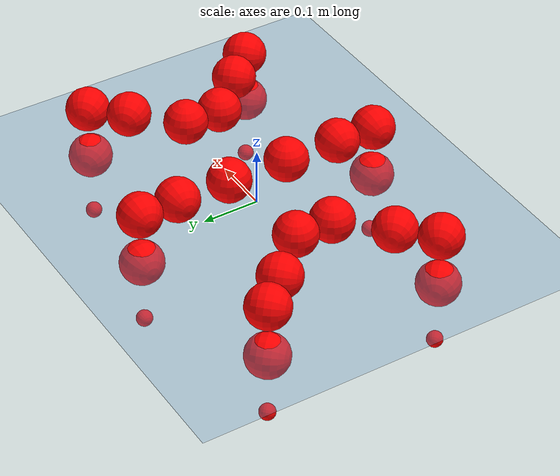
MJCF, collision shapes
<mujoco model="Golem">
  <compiler angle="radian" assetdir="assets" balanceinertia="true" inertiafromgeom="false"/>

  <option timestep="0.005" density="1.2" viscosity="2e-05"/>

  <size nkey="1"/>

  <visual>
    <quality shadowsize="8192"/>
    <map shadowclip="0.5"/>
  </visual>

  <default>
    <default class="/">
      <joint armature="0.01" damping="0.01" frictionloss="0.01"/>
      <geom contype="0" conaffinity="0" group="1" solref="-1000 -80"/>
      <site size="0.01 0.005 0.005" group="5"/>
      <general forcelimited="true" biastype="affine" gainprm="25" biasprm="0 -25 -0.5"/>
      <default class="visual">
        <geom type="mesh" group="2"/>
      </default>
      <default class="collision">
        <geom group="3"/>
      </default>
      <default class="foot">
        <geom size="0.01 0 0" condim="6" group="4" priority="1" solimp="0.015 1 0.01"/>
      </default>
      <default class="reward_collision_sphere">
        <geom group="5" rgba="1 0 0 1"/>
      </default>
    </default>
  </default>

  <asset>
    <texture type="skybox" colorspace="auto" name="//unnamed_texture_0" builtin="gradient" rgb1="0.95 0.95 0.95" rgb2="0.95 0.95 0.95" width="100" height="600"/>
    <texture type="2d" colorspace="auto" name="texplane" builtin="checker" rgb1="0.345 0.575 0.748" rgb2="0.345 0.575 0.748" markrgb="1 1 1" width="512" height="512"/>
    <material name="MatPlane" class="/" texture="texplane" texuniform="true" texrepeat="2 2" specular="0.9"/>
    <mesh name="body" class="/" file="body.stl" scale="0.001 0.001 0.001"/>
    <mesh name="coxa" class="/" file="coxa.stl" scale="0.001 0.001 0.001"/>
    <mesh name="femur" class="/" file="femur.stl" scale="0.001 0.001 0.001"/>
    <mesh name="tibia" class="/" file="tibia.stl" scale="0.001 0.001 0.001"/>
    <mesh name="tarsus" class="/" file="tarsus.stl" scale="0.001 0.001 0.001"/>
  </asset>

  <worldbody>
    <geom name="floor" class="/" size="100 100 0.125" type="plane" group="0" material="MatPlane"/>
    <light name="toplight_shadow" class="/" pos="0 0 5" dir="0.0990148 0.0990148 -0.990148" type="directional" ambient="0.04 0.04 0.04" diffuse="0.55 0.55 0.55" specular="0.12 0.12 0.12"/>
    <light name="toplight_fill" class="/" pos="0 0 5" dir="0.0990148 0.0990148 -0.990148" type="directional" castshadow="false" ambient="0.04 0.04 0.04" diffuse="0.3 0.3 0.3" specular="0.08 0.08 0.08"/>
    <body name="trunk" pos="-0.000800771 0.000685454 -0.00080832" quat="1 -9.21207e-06 -3.3019e-05 -0.000139285">
      <inertial pos="0.00107686 -0.000996518 -0.00509607" quat="0.999999 -0.00104163 -0.00034455 0.000316431" mass="3.09488" diaginertia="0.0166414 0.00132069 0.0127047"/>
      <joint name="//unnamed_joint_0" type="free"/>
      <geom name="//unnamed_geom_1" class="/" pos="0 0 0.0673091" quat="1 0 0 0" type="mesh" rgba="0.9 0.9 0.9 1" mesh="body"/>
      <site name="imu" class="/" pos="0.141205 0.0032538 0.102957" size="0.00941049"/>
      <camera name="track" class="/" pos="0 -1.33421 0" quat="0.707107 0.707107 0 0" mode="trackcom"/>
      <camera name="ego_camera" class="/" pos="0.143564 0 0.10517" quat="-0.5 -0.5 0.5 0.5"/>
      <body name="coxa_RR" pos="-0.196451 -0.055926 0.0689555" quat="0.382662 -8.31998e-05 -1.3586e-05 -0.923888">
        <inertial pos="-0.0003204 -0.00117593 0.00161361" quat="0.999989 0.00142785 0.000882898 0.00435093" mass="0.167247" diaginertia="0.0164876 0.0013379 0.0128904"/>
        <joint name="coxa_joint_RR" class="/" pos="0 0 0" axis="-0.000493024 0.00247671 -0.999997" range="-3.142 3.13596" armature="0.00946626" damping="0.0056101" frictionloss="0.00917149"/>
        <geom name="//unnamed_geom_2" class="/" type="mesh" rgba="0.2 0.2 0.2 1" mesh="coxa"/>
        <geom name="//unnamed_geom_3" class="reward_collision_sphere" size="0.037642" pos="-0.0331301 0 0"/>
        <body name="femur_RR" pos="0.0673264 0.000971517 -0.0011503" quat="0.500002 -0.499995 0.499998 0.500006">
          <inertial pos="-6.52541e-05 5.34603e-06 1.54934e-05" quat="1 5.75377e-05 -4.35046e-05 5.07448e-05" mass="0.165136" diaginertia="0.0162742 0.00131092 0.0127567"/>
          <joint name="femur_joint_RR" class="/" pos="0 0 0" axis="-0.000346629 -3.14414e-05 -1" range="-3.12706 3.12148" armature="0.00962769" damping="0.00301069" frictionloss="0.00935588"/>
          <geom name="//unnamed_geom_4" class="/" type="mesh" rgba="0.9 0.9 0.9 1" mesh="femur"/>
          <geom name="//unnamed_geom_5" class="reward_collision_sphere" size="0.037642"/>
          <body name="tibia_RR" pos="0.000351928 -0.0731622 0.00134781" quat="7.398e-05 1 0.000109999 0.000207715">
            <inertial pos="-0.000997095 -0.000272855 -1.20458e-05" quat="0.99999 0.00330071 -0.00246526 -0.00175926" mass="0.165025" diaginertia="0.0162932 0.00130448 0.0129351"/>
            <joint name="tibia_joint_RR" class="/" pos="0 0 0" axis="-0.00148502 0.00106046 0.999998" range="-3.12029 3.10676" armature="0.00921165" damping="0.00303347" frictionloss="0.00964113"/>
            <geom name="//unnamed_geom_6" class="/" type="mesh" rgba="0.2 0.2 0.2 1" mesh="tibia"/>
            <geom name="//unnamed_geom_7" class="reward_collision_sphere" size="0.037642"/>
            <body name="tarsus_RR" pos="0.0973233 -0.000204529 -0.000851345" quat="1 1.46453e-06 -7.51565e-05 0.000104688">
              <inertial pos="0.0677645 0.00234892 -0.00026523" quat="0.502594 0.496369 0.501505 0.499511" mass="0.167388" diaginertia="0.0167638 0.00133729 0.0129856"/>
              <joint name="tarsus_joint_RR" class="/" pos="0 0 0" axis="-0.00194339 -0.00877347 0.99996" range="-3.11453 3.14443" armature="0.00907672" damping="0.0444858" frictionloss="0.00897134"/>
              <geom name="//unnamed_geom_8" class="/" type="mesh" rgba="0.9 0.9 0.9 1" mesh="tarsus"/>
              <geom name="foot_1" class="foot" size="0.0090002" pos="0.123686 0 0" quat="0 -0.707107 0 0.707107"/>
              <geom name="//unnamed_geom_10" class="reward_collision_sphere" size="0.037642"/>
              <geom name="//unnamed_geom_11" class="reward_collision_sphere" size="0.0141157" pos="0.118716 0 0"/>
              <site name="foot_1" class="foot" pos="0.123686 0 0" quat="0 -0.707107 0 0.707107" size="0.00941049"/>
            </body>
          </body>
        </body>
      </body>
      <body name="coxa_RM" pos="-0.000949866 -0.0890745 0.0672898" quat="0.707107 3.44599e-06 -7.85545e-06 -0.707107">
        <inertial pos="-0.000210467 -0.000856192 -7.77164e-05" quat="0.999999 -0.000184864 -0.00148026 -0.000322966" mass="0.167672" diaginertia="0.0164025 0.00132292 0.0128545"/>
        <joint name="coxa_joint_RM" class="/" pos="0 0 0" axis="0.00229969 -0.00425379 -0.999988" range="-3.14234 3.14468" armature="0.00936514" damping="0.00927246" frictionloss="0.00872332"/>
        <geom name="//unnamed_geom_12" class="/" type="mesh" rgba="0.2 0.2 0.2 1" mesh="coxa"/>
        <geom name="//unnamed_geom_13" class="reward_collision_sphere" size="0.037642" pos="-0.0331301 0 0"/>
        <body name="femur_RM" pos="0.0646613 -0.00138535 0.000609351" quat="0.499939 -0.500236 0.499804 0.500022">
          <inertial pos="-0.000326735 0.000577713 -0.000169734" quat="1 -1.70585e-05 -1.0266e-05 4.75319e-07" mass="0.165342" diaginertia="0.0161892 0.00132372 0.0127642"/>
          <joint name="femur_joint_RM" class="/" pos="0 0 0" axis="-8.2266e-05 -0.000126075 -1" range="-3.14001 3.15689" armature="0.0091962" damping="0" frictionloss="0.00953392"/>
          <geom name="//unnamed_geom_14" class="/" type="mesh" rgba="0.9 0.9 0.9 1" mesh="femur"/>
          <geom name="//unnamed_geom_15" class="reward_collision_sphere" size="0.037642"/>
          <body name="tibia_RM" pos="0.000549615 -0.0705468 -7.67379e-05" quat="-2.28379e-05 1 -5.48414e-05 1.45494e-05">
            <inertial pos="-0.0012209 -0.001716 -0.000785605" quat="0.99998 -0.00353879 -0.00498511 -0.0017256" mass="0.166478" diaginertia="0.0164856 0.00132089 0.0126829"/>
            <joint name="tibia_joint_RM" class="/" pos="0 0 0" axis="-0.00118466 0.000151639 0.999999" range="-3.14174 3.11889" armature="0.00897119" damping="0.00892414" frictionloss="0.00901391"/>
            <geom name="//unnamed_geom_16" class="/" type="mesh" rgba="0.2 0.2 0.2 1" mesh="tibia"/>
            <geom name="//unnamed_geom_17" class="reward_collision_sphere" size="0.037642"/>
            <body name="tarsus_RM" pos="0.0974273 0.000971833 0.000253662" quat="1 -2.97772e-05 -1.21463e-05 -8.7013e-07">
              <inertial pos="0.0665569 -0.00027608 -0.00015388" quat="0.500139 0.499322 0.501522 0.499012" mass="0.165467" diaginertia="0.0161263 0.00130393 0.0127912"/>
              <joint name="tarsus_joint_RM" class="/" pos="0 0 0" axis="-0.000134766 0.00106513 0.999999" range="-3.1385 3.14484" armature="0.00903909" damping="0.00729354" frictionloss="0.00963194"/>
              <geom name="//unnamed_geom_18" class="/" type="mesh" rgba="0.9 0.9 0.9 1" mesh="tarsus"/>
              <geom name="foot_2" class="foot" size="0.00953862" pos="0.123686 0 0" quat="0 -0.707107 0 0.707107"/>
              <geom name="//unnamed_geom_20" class="reward_collision_sphere" size="0.037642"/>
              <geom name="//unnamed_geom_21" class="reward_collision_sphere" size="0.0141157" pos="0.118716 0 0"/>
              <site name="foot_2" class="foot" pos="0.123686 0 0" quat="0 -0.707107 0 0.707107" size="0.00941049"/>
            </body>
          </body>
        </body>
      </body>
      <body name="coxa_RF" pos="0.197175 -0.0564869 0.0670414" quat="0.923979 0.000144157 -7.83498e-05 -0.382444">
        <inertial pos="0.000636104 -4.09665e-05 -1.87215e-05" quat="0.999997 -0.00157049 -0.00138822 0.00149415" mass="0.167145" diaginertia="0.0166669 0.00132708 0.012796"/>
        <joint name="coxa_joint_RF" class="/" pos="0 0 0" axis="0.000983145 -0.000307131 -0.999999" stiffness="0.000624026" range="-3.12302 3.12795" armature="0.00988134" damping="0.00790472" frictionloss="0.00925969"/>
        <geom name="//unnamed_geom_22" class="/" type="mesh" rgba="0.2 0.2 0.2 1" mesh="coxa"/>
        <geom name="//unnamed_geom_23" class="reward_collision_sphere" size="0.037642" pos="-0.0331301 0 0"/>
        <body name="femur_RF" pos="0.06657 -0.000373299 -0.00145562" quat="0.49992 -0.499956 0.499951 0.500173">
          <inertial pos="-0.000436676 -0.000549114 0.000174995" quat="0.999999 -0.00111165 -0.000972376 9.16159e-05" mass="0.166568" diaginertia="0.0165064 0.00133669 0.0128226"/>
          <joint name="femur_joint_RF" class="/" pos="0 0 0" axis="0.000635299 -0.000985754 -0.999999" range="-3.13043 3.13471" armature="0.00914208" damping="0" frictionloss="0.00906953"/>
          <geom name="//unnamed_geom_24" class="/" type="mesh" rgba="0.9 0.9 0.9 1" mesh="femur"/>
          <geom name="//unnamed_geom_25" class="reward_collision_sphere" size="0.037642"/>
          <body name="tibia_RF" pos="-0.000347908 -0.0713816 -0.00117394" quat="0.000120367 1 -3.8649e-05 -2.41109e-05">
            <inertial pos="-0.000613667 -0.000284434 -0.000511076" quat="0.999999 0.00134146 0.00050989 0.000750564" mass="0.167069" diaginertia="0.0167762 0.00133856 0.012892"/>
            <joint name="tibia_joint_RF" class="/" pos="0 0 0" axis="0.000155943 0.000549205 1" range="-3.12969 3.13414" armature="0.0090296" damping="0.0130795" frictionloss="0.00939273"/>
            <geom name="//unnamed_geom_26" class="/" type="mesh" rgba="0.2 0.2 0.2 1" mesh="tibia"/>
            <geom name="//unnamed_geom_27" class="reward_collision_sphere" size="0.037642"/>
            <body name="tarsus_RF" pos="0.0961399 0.000530563 0.00126566" quat="1 0.000279724 -0.000459664 -3.0603e-05">
              <inertial pos="0.0662918 -0.000890706 -8.22659e-05" quat="0.494168 0.503893 0.502211 0.499674" mass="0.166725" diaginertia="0.0165948 0.00129849 0.012844"/>
              <joint name="tarsus_joint_RF" class="/" pos="0 0 0" axis="0.000638013 -0.00188283 0.999998" range="-3.11911 3.12946" armature="0.0101803" damping="0" frictionloss="0.00935665"/>
              <geom name="//unnamed_geom_28" class="/" type="mesh" rgba="0.9 0.9 0.9 1" mesh="tarsus"/>
              <geom name="foot_3" class="foot" size="0.00961849" pos="0.123686 0 0" quat="0 -0.707107 0 0.707107"/>
              <geom name="//unnamed_geom_30" class="reward_collision_sphere" size="0.037642"/>
              <geom name="//unnamed_geom_31" class="reward_collision_sphere" size="0.0141157" pos="0.118716 0 0"/>
              <site name="foot_3" class="foot" pos="0.123686 0 0" quat="0 -0.707107 0 0.707107" size="0.00941049"/>
            </body>
          </body>
        </body>
      </body>
      <body name="coxa_LR" pos="-0.196005 0.0579968 0.0686891" quat="0.382244 -0.000108305 0.000169973 0.924062">
        <inertial pos="0.000558718 -0.00156308 -0.000213061" quat="1 4.55788e-06 7.81067e-06 -2.41058e-05" mass="0.16483" diaginertia="0.0162797 0.00131691 0.0126245"/>
        <joint name="coxa_joint_LR" class="/" pos="0 0 0" axis="-0.00194601 -0.00262362 -0.999995" range="-3.12027 3.15926" armature="0.00904557" damping="0.00767024" frictionloss="0.00917736"/>
        <geom name="//unnamed_geom_32" class="/" type="mesh" rgba="0.2 0.2 0.2 1" mesh="coxa"/>
        <geom name="//unnamed_geom_33" class="reward_collision_sphere" size="0.037642" pos="-0.0331301 0 0"/>
        <body name="femur_LR" pos="0.0685367 -0.00172809 -0.00128206" quat="0.500108 -0.500135 0.499817 0.49994">
          <inertial pos="-0.000592858 9.12092e-05 -5.58906e-05" quat="0.999987 0.0024171 -0.00315781 -0.00325405" mass="0.167375" diaginertia="0.0163261 0.00131214 0.0130344"/>
          <joint name="femur_joint_LR" class="/" pos="0 0 0" axis="-0.00111531 0.00280355 0.999995" range="-3.11026 3.13882" armature="0.00905627" damping="0.00683845" frictionloss="0.00918384"/>
          <geom name="//unnamed_geom_34" class="/" type="mesh" rgba="0.9 0.9 0.9 1" mesh="femur"/>
          <geom name="//unnamed_geom_35" class="reward_collision_sphere" size="0.037642"/>
          <body name="tibia_LR" pos="0.00056514 -0.0731957 -0.00149656" quat="-0.000369889 1 -0.000407236 5.30326e-05">
            <inertial pos="-0.000468317 -0.00106836 3.70929e-05" quat="0.999992 0.00361931 -0.0012521 -0.00147805" mass="0.165954" diaginertia="0.0162385 0.0013006 0.0128029"/>
            <joint name="tibia_joint_LR" class="/" pos="0 0 0" axis="-0.000143386 0.00233946 -0.999997" range="-3.1396 3.12154" armature="0.00977823" damping="0" frictionloss="0.00906002"/>
            <geom name="//unnamed_geom_36" class="/" type="mesh" rgba="0.2 0.2 0.2 1" mesh="tibia"/>
            <geom name="//unnamed_geom_37" class="reward_collision_sphere" size="0.037642"/>
            <body name="tarsus_LR" pos="0.0980606 0.00099602 0.000503635" quat="1 6.58261e-05 -9.89155e-05 0.000128798">
              <inertial pos="0.0662372 0.000132758 7.16911e-05" quat="0.49947 0.502106 0.500771 0.497641" mass="0.163942" diaginertia="0.0163012 0.00131107 0.0127255"/>
              <joint name="tarsus_joint_LR" class="/" pos="0 0 0" axis="-0.0028545 0.0015771 -0.999995" range="-3.14811 3.13736" armature="0.00935713" damping="0.0280653" frictionloss="0.00910672"/>
              <geom name="//unnamed_geom_38" class="/" type="mesh" rgba="0.9 0.9 0.9 1" mesh="tarsus"/>
              <geom name="foot_4" class="foot" size="0.00941957" pos="0.123686 0 0" quat="0.707107 0 -0.707107 0"/>
              <geom name="//unnamed_geom_40" class="reward_collision_sphere" size="0.037642"/>
              <geom name="//unnamed_geom_41" class="reward_collision_sphere" size="0.0141157" pos="0.118716 0 0"/>
              <site name="foot_4" class="foot" pos="0.123686 0 0" quat="0.707107 0 -0.707107 0" size="0.00941049"/>
            </body>
          </body>
        </body>
      </body>
      <body name="coxa_LM" pos="-0.00126699 0.0858845 0.0687287" quat="0.707317 0.000110409 0.000496259 0.706896">
        <inertial pos="0.000136868 0.000280877 0.00125478" quat="1 -0.000115623 -0.000380758 0.000474526" mass="0.168428" diaginertia="0.0164465 0.00130907 0.0130541"/>
        <joint name="coxa_joint_LM" class="/" pos="0 0 0" axis="-0.000651999 0.000881664 -0.999999" stiffness="0.000105178" range="-3.13904 3.14051" armature="0.00982359" damping="0.00436899" frictionloss="0.00972411"/>
        <geom name="//unnamed_geom_42" class="/" type="mesh" rgba="0.2 0.2 0.2 1" mesh="coxa"/>
        <geom name="//unnamed_geom_43" class="reward_collision_sphere" size="0.037642" pos="-0.0331301 0 0"/>
        <body name="femur_LM" pos="0.0624867 9.27452e-05 1.00952e-06" quat="0.500041 -0.499877 0.500099 0.499983">
          <inertial pos="-5.36595e-05 -0.00101603 0.000654196" quat="1 -0.000903679 0.000294892 -2.68012e-05" mass="0.166445" diaginertia="0.0162255 0.00132041 0.0129928"/>
          <joint name="femur_joint_LM" class="/" pos="0 0 0" axis="-0.00378135 0.00546978 0.999978" stiffness="0.000994408" range="-3.12866 3.1415" armature="0.00892826" damping="0.00634141" frictionloss="0.00914289"/>
          <geom name="//unnamed_geom_44" class="/" type="mesh" rgba="0.9 0.9 0.9 1" mesh="femur"/>
          <geom name="//unnamed_geom_45" class="reward_collision_sphere" size="0.037642"/>
          <body name="tibia_LM" pos="0.00113666 -0.0694511 0.00142283" quat="9.53807e-05 1 4.48249e-05 -5.85872e-05">
            <inertial pos="0.000832438 -0.00171911 0.00146081" quat="0.999973 0.00187104 -0.0060344 0.00386855" mass="0.164832" diaginertia="0.0165758 0.00130659 0.0128817"/>
            <joint name="tibia_joint_LM" class="/" pos="0 0 0" axis="0.00070893 0.00160005 -0.999998" range="-3.13451 3.12549" armature="0.00919609" damping="0.00404012" frictionloss="0.00933282"/>
            <geom name="//unnamed_geom_46" class="/" type="mesh" rgba="0.2 0.2 0.2 1" mesh="tibia"/>
            <geom name="//unnamed_geom_47" class="reward_collision_sphere" size="0.037642"/>
            <body name="tarsus_LM" pos="0.0973235 -8.17994e-05 -0.000297739" quat="1 0.000185467 4.97869e-05 -0.000249269">
              <inertial pos="0.0676671 9.44767e-05 -0.000274376" quat="0.504753 0.497433 0.49937 0.498412" mass="0.16868" diaginertia="0.0164958 0.00133256 0.0130693"/>
              <joint name="tarsus_joint_LM" class="/" pos="0 0 0" axis="0.00158934 -0.000870163 -0.999998" range="-3.1351 3.12771" armature="0.00975594" damping="0" frictionloss="0.00944449"/>
              <geom name="//unnamed_geom_48" class="/" type="mesh" rgba="0.9 0.9 0.9 1" mesh="tarsus"/>
              <geom name="foot_5" class="foot" size="0.0095844" pos="0.123686 0 0" quat="0.707107 0 -0.707107 0"/>
              <geom name="//unnamed_geom_50" class="reward_collision_sphere" size="0.037642"/>
              <geom name="//unnamed_geom_51" class="reward_collision_sphere" size="0.0141157" pos="0.118716 0 0"/>
              <site name="foot_5" class="foot" pos="0.123686 0 0" quat="0.707107 0 -0.707107 0" size="0.00941049"/>
            </body>
          </body>
        </body>
      </body>
      <body name="coxa_LF" pos="0.196259 0.0557905 0.0676151" quat="0.923818 8.44659e-05 0.000315005 0.382833">
        <inertial pos="-0.000271906 7.00601e-05 -0.000605272" quat="0.999973 -0.00631486 -0.0015475 -0.00339076" mass="0.170003" diaginertia="0.0167204 0.00134403 0.0127321"/>
        <joint name="coxa_joint_LF" class="/" pos="0 0 0" axis="0.00101704 -0.000234353 -0.999999" range="-3.13828 3.1361" armature="0.00939179" damping="0.00361387" frictionloss="0.00960602"/>
        <geom name="//unnamed_geom_52" class="/" type="mesh" rgba="0.2 0.2 0.2 1" mesh="coxa"/>
        <geom name="//unnamed_geom_53" class="reward_collision_sphere" size="0.037642" pos="-0.0331301 0 0"/>
        <body name="femur_LF" pos="0.0652382 -0.00069287 -0.00124242" quat="0.49988 -0.500146 0.499975 0.499999">
          <inertial pos="0.000631639 0.000682121 0.000942283" quat="0.999995 0.00252968 -0.00191373 -0.000211553" mass="0.165059" diaginertia="0.0163817 0.00131834 0.0127043"/>
          <joint name="femur_joint_LF" class="/" pos="0 0 0" axis="0.00431163 0.00555936 0.999975" range="-3.14299 3.16909" armature="0.00916454" damping="0" frictionloss="0.009326"/>
          <geom name="//unnamed_geom_54" class="/" type="mesh" rgba="0.9 0.9 0.9 1" mesh="femur"/>
          <geom name="//unnamed_geom_55" class="reward_collision_sphere" size="0.037642"/>
          <body name="tibia_LF" pos="0.00123826 -0.0715333 0.00052827" quat="-0.000105036 1 0.00018016 -8.86997e-05">
            <inertial pos="-0.000293277 -0.000210291 0.000174404" quat="0.999999 0.000305816 0.000642343 -0.000806262" mass="0.166607" diaginertia="0.0164567 0.00131465 0.0128274"/>
            <joint name="tibia_joint_LF" class="/" pos="0 0 0" axis="-0.00232873 -0.00158398 -0.999996" range="-3.12337 3.12821" armature="0.00900102" damping="0.00225739" frictionloss="0.00920982"/>
            <geom name="//unnamed_geom_56" class="/" type="mesh" rgba="0.2 0.2 0.2 1" mesh="tibia"/>
            <geom name="//unnamed_geom_57" class="reward_collision_sphere" size="0.037642"/>
            <body name="tarsus_LF" pos="0.0972678 -0.000158296 0.000683539" quat="1 0.000216846 0.000373976 -0.00013519">
              <inertial pos="0.0670756 -0.000829781 -0.000308927" quat="0.500004 0.50012 0.500015 0.499862" mass="0.165727" diaginertia="0.0165407 0.00132916 0.0128119"/>
              <joint name="tarsus_joint_LF" class="/" pos="0 0 0" axis="0.0030787 -0.00597909 -0.999977" stiffness="0.0250641" range="-3.15487 3.15776" armature="0.00934049" damping="0.00168388" frictionloss="0.00943686"/>
              <geom name="//unnamed_geom_58" class="/" type="mesh" rgba="0.9 0.9 0.9 1" mesh="tarsus"/>
              <geom name="foot_6" class="foot" size="0.00916876" pos="0.123686 0 0" quat="0.707107 0 -0.707107 0"/>
              <geom name="//unnamed_geom_60" class="reward_collision_sphere" size="0.037642"/>
              <geom name="//unnamed_geom_61" class="reward_collision_sphere" size="0.0141157" pos="0.118716 0 0"/>
              <site name="foot_6" class="foot" pos="0.123686 0 0" quat="0.707107 0 -0.707107 0" size="0.00941049"/>
            </body>
          </body>
        </body>
      </body>
    </body>
  </worldbody>

  <contact>
    <pair class="/" geom1="floor" geom2="foot_1" name="//unnamed_contact_0"/>
    <pair class="/" geom1="floor" geom2="foot_2" name="//unnamed_contact_1"/>
    <pair class="/" geom1="floor" geom2="foot_3" name="//unnamed_contact_2"/>
    <pair class="/" geom1="floor" geom2="foot_4" name="//unnamed_contact_3"/>
    <pair class="/" geom1="floor" geom2="foot_5" name="//unnamed_contact_4"/>
    <pair class="/" geom1="floor" geom2="foot_6" name="//unnamed_contact_5"/>
  </contact>

  <actuator>
    <general name="coxa_joint_RR" class="/" joint="coxa_joint_RR" forcerange="-6.64698 6.64698" gainprm="22.8748" biasprm="0 -22.8748 -0.481814"/>
    <general name="femur_joint_RR" class="/" joint="femur_joint_RR" forcerange="-7.11427 7.11427" gainprm="22.8748" biasprm="0 -22.8748 -0.481814"/>
    <general name="tibia_joint_RR" class="/" joint="tibia_joint_RR" forcerange="-6.57017 6.57017" gainprm="22.8748" biasprm="0 -22.8748 -0.481814"/>
    <general name="tarsus_joint_RR" class="/" joint="tarsus_joint_RR" forcerange="-7.04705 7.04705" gainprm="22.8748" biasprm="0 -22.8748 -0.481814"/>
    <general name="coxa_joint_RM" class="/" joint="coxa_joint_RM" forcerange="-6.88746 6.88746" gainprm="22.8748" biasprm="0 -22.8748 -0.481814"/>
    <general name="femur_joint_RM" class="/" joint="femur_joint_RM" forcerange="-6.82549 6.82549" gainprm="22.8748" biasprm="0 -22.8748 -0.481814"/>
    <general name="tibia_joint_RM" class="/" joint="tibia_joint_RM" forcerange="-6.49164 6.49164" gainprm="22.8748" biasprm="0 -22.8748 -0.481814"/>
    <general name="tarsus_joint_RM" class="/" joint="tarsus_joint_RM" forcerange="-6.95955 6.95955" gainprm="22.8748" biasprm="0 -22.8748 -0.481814"/>
    <general name="coxa_joint_RF" class="/" joint="coxa_joint_RF" forcerange="-6.89629 6.89629" gainprm="22.8748" biasprm="0 -22.8748 -0.481814"/>
    <general name="femur_joint_RF" class="/" joint="femur_joint_RF" forcerange="-7.25342 7.25342" gainprm="22.8748" biasprm="0 -22.8748 -0.481814"/>
    <general name="tibia_joint_RF" class="/" joint="tibia_joint_RF" forcerange="-6.62933 6.62933" gainprm="22.8748" biasprm="0 -22.8748 -0.481814"/>
    <general name="tarsus_joint_RF" class="/" joint="tarsus_joint_RF" forcerange="-7.24349 7.24349" gainprm="22.8748" biasprm="0 -22.8748 -0.481814"/>
    <general name="coxa_joint_LR" class="/" joint="coxa_joint_LR" forcerange="-6.81321 6.81321" gainprm="22.8748" biasprm="0 -22.8748 -0.481814"/>
    <general name="femur_joint_LR" class="/" joint="femur_joint_LR" forcerange="-6.67888 6.67888" gainprm="22.8748" biasprm="0 -22.8748 -0.481814"/>
    <general name="tibia_joint_LR" class="/" joint="tibia_joint_LR" forcerange="-6.65963 6.65963" gainprm="22.8748" biasprm="0 -22.8748 -0.481814"/>
    <general name="tarsus_joint_LR" class="/" joint="tarsus_joint_LR" forcerange="-6.83495 6.83495" gainprm="22.8748" biasprm="0 -22.8748 -0.481814"/>
    <general name="coxa_joint_LM" class="/" joint="coxa_joint_LM" forcerange="-6.62578 6.62578" gainprm="22.8748" biasprm="0 -22.8748 -0.481814"/>
    <general name="femur_joint_LM" class="/" joint="femur_joint_LM" forcerange="-6.88086 6.88086" gainprm="22.8748" biasprm="0 -22.8748 -0.481814"/>
    <general name="tibia_joint_LM" class="/" joint="tibia_joint_LM" forcerange="-6.63332 6.63332" gainprm="22.8748" biasprm="0 -22.8748 -0.481814"/>
    <general name="tarsus_joint_LM" class="/" joint="tarsus_joint_LM" forcerange="-6.98487 6.98487" gainprm="22.8748" biasprm="0 -22.8748 -0.481814"/>
    <general name="coxa_joint_LF" class="/" joint="coxa_joint_LF" forcerange="-6.70531 6.70531" gainprm="22.8748" biasprm="0 -22.8748 -0.481814"/>
    <general name="femur_joint_LF" class="/" joint="femur_joint_LF" forcerange="-6.77178 6.77178" gainprm="22.8748" biasprm="0 -22.8748 -0.481814"/>
    <general name="tibia_joint_LF" class="/" joint="tibia_joint_LF" forcerange="-6.80778 6.80778" gainprm="22.8748" biasprm="0 -22.8748 -0.481814"/>
    <general name="tarsus_joint_LF" class="/" joint="tarsus_joint_LF" forcerange="-6.8514 6.8514" gainprm="22.8748" biasprm="0 -22.8748 -0.481814"/>
  </actuator>

  <sensor>
    <gyro site="imu" name="imu_angular_velocity"/>
    <velocimeter site="imu" name="imu_linear_velocity"/>
    <framelinvel objtype="site" objname="foot_1" name="foot_1_global_linear_velocity"/>
    <framelinvel objtype="site" objname="foot_2" name="foot_2_global_linear_velocity"/>
    <framelinvel objtype="site" objname="foot_3" name="foot_3_global_linear_velocity"/>
    <framelinvel objtype="site" objname="foot_4" name="foot_4_global_linear_velocity"/>
    <framelinvel objtype="site" objname="foot_5" name="foot_5_global_linear_velocity"/>
    <framelinvel objtype="site" objname="foot_6" name="foot_6_global_linear_velocity"/>
  </sensor>

  <keyframe>
    <key name="home" qpos="0 0 0.1457 1 0 0 0 0 0 0 0 0 0 0 0 0 0 0 0 0 0 0 0 0 0 0 0 0 0 0 0"/>
  </keyframe>
</mujoco>
